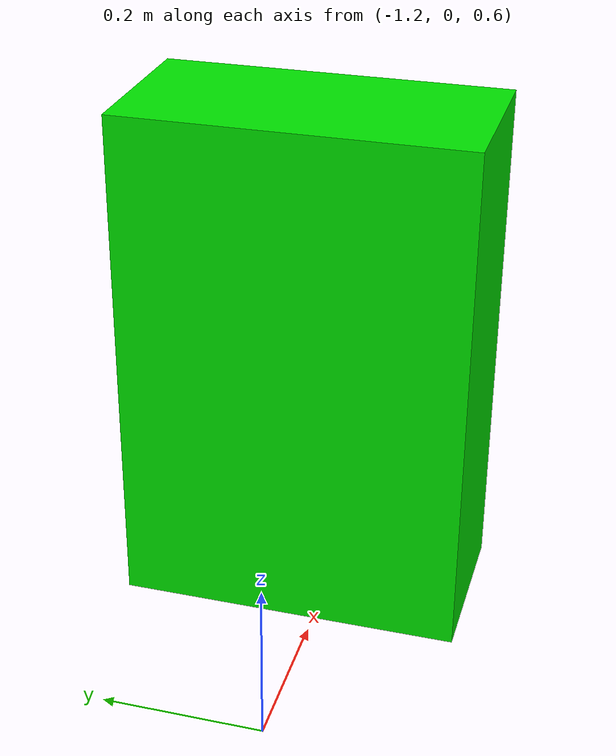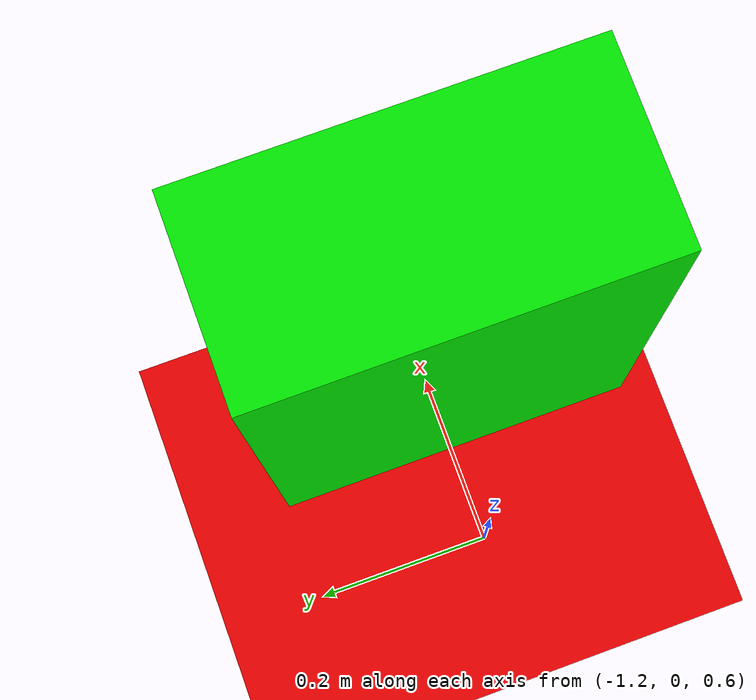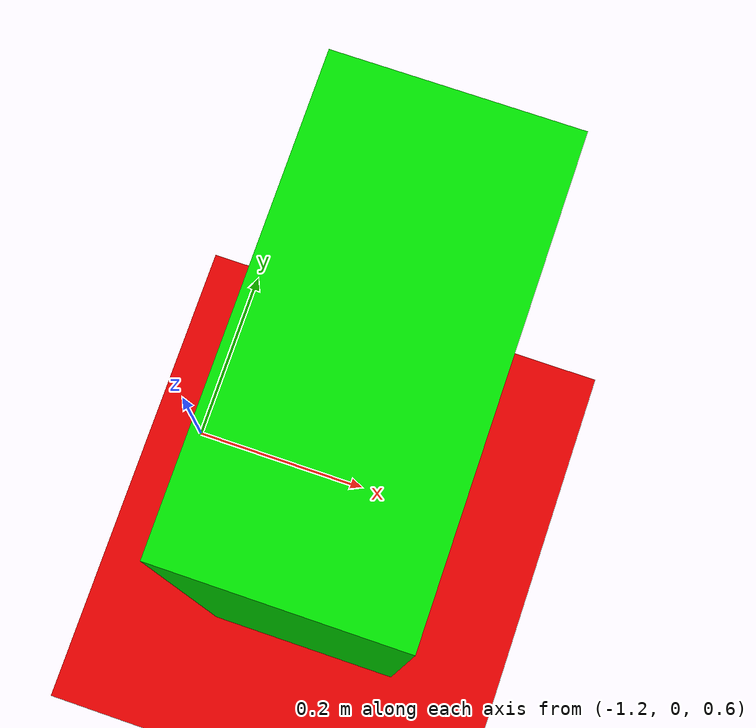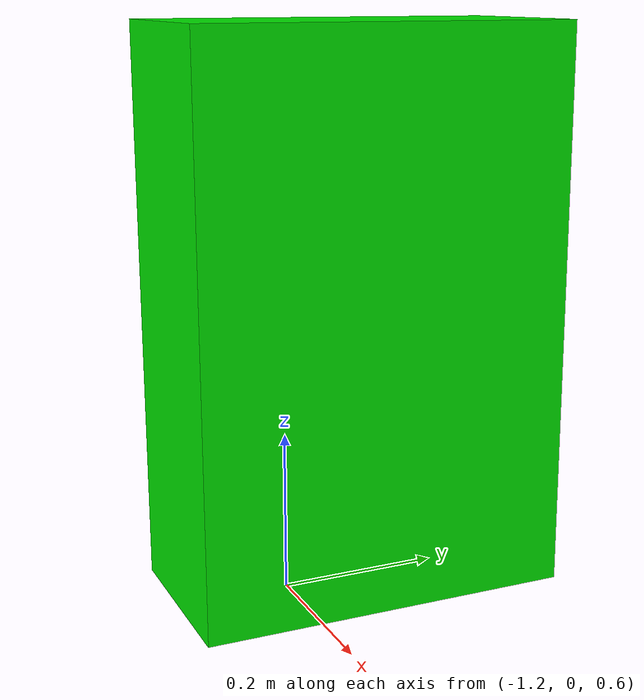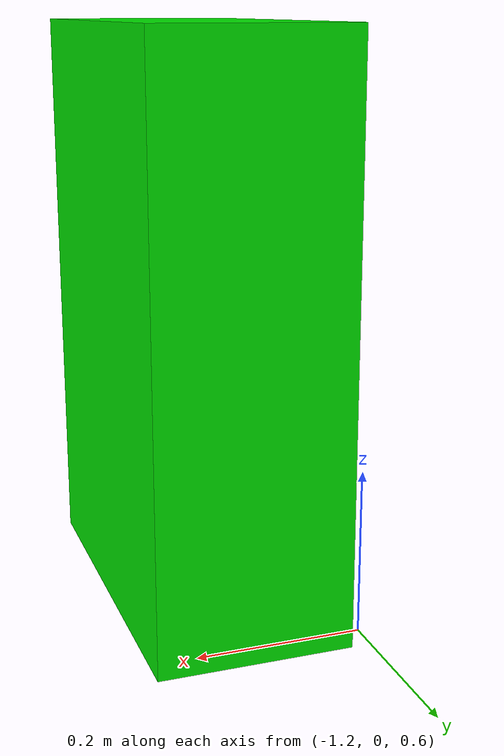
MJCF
<mujoco>
	<worldbody>
        <light diffuse=".5 .5 .5" pos="0 0 3" dir="0 0 -1"/>
		<geom type="plane" size="2 2 0.1" rgba=".9 0 0 1"/>
        <body pos="-1 0 1" euler="0 0 0" name="agent">
            <joint name="box_joint" type="free"/>
            <geom type="box" size=".1 .2 .3" rgba="0 .9 0 1"/>
            <site name="box_range" type="box" size=".1 .2 .3" rgba="0 .9 0 1"/>
        </body>
	</worldbody>
    <sensor>
        <rangefinder name="box1" site="box_range"/>
    </sensor>
    <actuator>
        <position ctrllimited="true" ctrlrange="0 0.2" joint="box_joint" kp="30000" name="box_position" user="1"></position>
    </actuator>
</mujoco>
